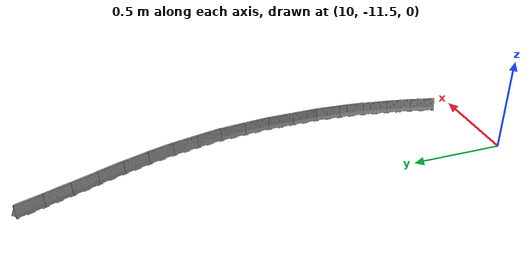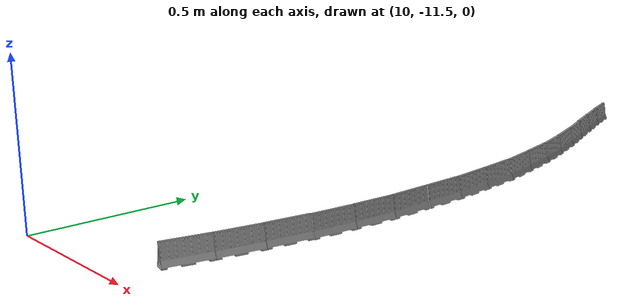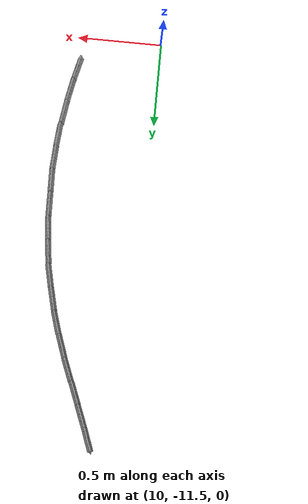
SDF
<sdf version="1.6">
 <world name="bfmc_official">
  <model name="separator_clone_clone_clone_clone_clone_clone_clone_clone_2_clone_clone_clone_clone_clone_clone_clone_clone_clone_clone_clone_clone_clone_clone_clone_clone_clone_clone_clone_clone_clone_clone_clone_clone_clone_clone">
   <link name="separator::separator::link_0">
    <inertial>
     <mass>1</mass>
     <inertia>
      <ixx>0.166667</ixx>
      <ixy>0</ixy>
      <ixz>0</ixz>
      <iyy>0.166667</iyy>
      <iyz>0</iyz>
      <izz>0.166667</izz>
     </inertia>
    </inertial>
    <visual name="visual">
     <geometry><mesh><uri>model://separator/meshes/separator.dae</uri><scale>1 1 1</scale></mesh></geometry>
     <material>
      <lighting>1</lighting>
      <script><uri>file://media/materials/scripts/gazebo.material</uri><name>Gazebo/Gray</name></script>
      <shader type="vertex"><normal_map>__default__</normal_map></shader>
      <ambient>0.3 0.3 0.3 1</ambient>
      <diffuse>0.7 0.7 0.7 1</diffuse>
      <specular>0.01 0.01 0.01 1</specular>
      <emissive>0 0 0 1</emissive>
     </material>
    </visual>
    <collision name="collision">
     <geometry><mesh><uri>model://separator/meshes/separator.dae</uri><scale>1 1 1</scale></mesh></geometry>
     <surface>
      <friction>
       <ode><mu>1</mu><mu2>1</mu2><fdir1>0 0 0</fdir1><slip1>0</slip1><slip2>0</slip2></ode>
       <torsional>
        <coefficient>1</coefficient>
        <patch_radius>0</patch_radius>
        <surface_radius>0</surface_radius>
        <use_patch_radius>1</use_patch_radius>
        <ode><slip>0</slip></ode>
       </torsional>
      </friction>
      <bounce><restitution_coefficient>0</restitution_coefficient><threshold>1e+06</threshold></bounce>
      <contact>
       <collide_without_contact>0</collide_without_contact>
       <collide_without_contact_bitmask>1</collide_without_contact_bitmask>
       <collide_bitmask>1</collide_bitmask>
       <ode>
        <soft_cfm>0</soft_cfm>
        <soft_erp>0.2</soft_erp>
        <kp>1e+13</kp>
        <kd>1</kd>
        <max_vel>0.01</max_vel>
        <min_depth>0</min_depth>
       </ode>
       <bullet>
        <split_impulse>1</split_impulse>
        <split_impulse_penetration_threshold>-0.01</split_impulse_penetration_threshold>
        <soft_cfm>0</soft_cfm>
        <soft_erp>0.2</soft_erp>
        <kp>1e+13</kp>
        <kd>1</kd>
       </bullet>
      </contact>
     </surface>
    </collision>
   </link>
   <static>1</static>
   <pose>10.4863 -11.3058 0.044642 0 -0 2.90525</pose>
  </model>
  <model name="separator_clone_clone_clone_clone_clone_clone_clone_clone_2_clone_clone_clone_clone_clone_clone_clone_clone_clone_clone_clone_clone_clone_clone_clone_clone_clone_clone_clone_clone_clone_clone_clone_clone_clone_clone_clone">
   <link name="separator::separator::link_0">
    <inertial>
     <mass>1</mass>
     <inertia>
      <ixx>0.166667</ixx>
      <ixy>0</ixy>
      <ixz>0</ixz>
      <iyy>0.166667</iyy>
      <iyz>0</iyz>
      <izz>0.166667</izz>
     </inertia>
    </inertial>
    <visual name="visual">
     <geometry><mesh><uri>model://separator/meshes/separator.dae</uri><scale>1 1 1</scale></mesh></geometry>
     <material>
      <lighting>1</lighting>
      <script><uri>file://media/materials/scripts/gazebo.material</uri><name>Gazebo/Gray</name></script>
      <shader type="vertex"><normal_map>__default__</normal_map></shader>
      <ambient>0.3 0.3 0.3 1</ambient>
      <diffuse>0.7 0.7 0.7 1</diffuse>
      <specular>0.01 0.01 0.01 1</specular>
      <emissive>0 0 0 1</emissive>
     </material>
    </visual>
    <collision name="collision">
     <geometry><mesh><uri>model://separator/meshes/separator.dae</uri><scale>1 1 1</scale></mesh></geometry>
     <surface>
      <friction>
       <ode><mu>1</mu><mu2>1</mu2><fdir1>0 0 0</fdir1><slip1>0</slip1><slip2>0</slip2></ode>
       <torsional>
        <coefficient>1</coefficient>
        <patch_radius>0</patch_radius>
        <surface_radius>0</surface_radius>
        <use_patch_radius>1</use_patch_radius>
        <ode><slip>0</slip></ode>
       </torsional>
      </friction>
      <bounce><restitution_coefficient>0</restitution_coefficient><threshold>1e+06</threshold></bounce>
      <contact>
       <collide_without_contact>0</collide_without_contact>
       <collide_without_contact_bitmask>1</collide_without_contact_bitmask>
       <collide_bitmask>1</collide_bitmask>
       <ode>
        <soft_cfm>0</soft_cfm>
        <soft_erp>0.2</soft_erp>
        <kp>1e+13</kp>
        <kd>1</kd>
        <max_vel>0.01</max_vel>
        <min_depth>0</min_depth>
       </ode>
       <bullet>
        <split_impulse>1</split_impulse>
        <split_impulse_penetration_threshold>-0.01</split_impulse_penetration_threshold>
        <soft_cfm>0</soft_cfm>
        <soft_erp>0.2</soft_erp>
        <kp>1e+13</kp>
        <kd>1</kd>
       </bullet>
      </contact>
     </surface>
    </collision>
   </link>
   <static>1</static>
   <pose>10.5166 -11.1677 0.044642 0 -0 2.94946</pose>
  </model>
  <model name="separator_clone_clone_clone_clone_clone_clone_clone_clone_2_clone_clone_clone_clone_clone_clone_clone_clone_clone_clone_clone_clone_clone_clone_clone_clone_clone_clone_clone_clone_clone_clone_clone_clone_clone_clone_clone_clone">
   <link name="separator::separator::link_0">
    <inertial>
     <mass>1</mass>
     <inertia>
      <ixx>0.166667</ixx>
      <ixy>0</ixy>
      <ixz>0</ixz>
      <iyy>0.166667</iyy>
      <iyz>0</iyz>
      <izz>0.166667</izz>
     </inertia>
    </inertial>
    <visual name="visual">
     <geometry><mesh><uri>model://separator/meshes/separator.dae</uri><scale>1 1 1</scale></mesh></geometry>
     <material>
      <lighting>1</lighting>
      <script><uri>file://media/materials/scripts/gazebo.material</uri><name>Gazebo/Gray</name></script>
      <shader type="vertex"><normal_map>__default__</normal_map></shader>
      <ambient>0.3 0.3 0.3 1</ambient>
      <diffuse>0.7 0.7 0.7 1</diffuse>
      <specular>0.01 0.01 0.01 1</specular>
      <emissive>0 0 0 1</emissive>
     </material>
    </visual>
    <collision name="collision">
     <geometry><mesh><uri>model://separator/meshes/separator.dae</uri><scale>1 1 1</scale></mesh></geometry>
     <surface>
      <friction>
       <ode><mu>1</mu><mu2>1</mu2><fdir1>0 0 0</fdir1><slip1>0</slip1><slip2>0</slip2></ode>
       <torsional>
        <coefficient>1</coefficient>
        <patch_radius>0</patch_radius>
        <surface_radius>0</surface_radius>
        <use_patch_radius>1</use_patch_radius>
        <ode><slip>0</slip></ode>
       </torsional>
      </friction>
      <bounce><restitution_coefficient>0</restitution_coefficient><threshold>1e+06</threshold></bounce>
      <contact>
       <collide_without_contact>0</collide_without_contact>
       <collide_without_contact_bitmask>1</collide_without_contact_bitmask>
       <collide_bitmask>1</collide_bitmask>
       <ode>
        <soft_cfm>0</soft_cfm>
        <soft_erp>0.2</soft_erp>
        <kp>1e+13</kp>
        <kd>1</kd>
        <max_vel>0.01</max_vel>
        <min_depth>0</min_depth>
       </ode>
       <bullet>
        <split_impulse>1</split_impulse>
        <split_impulse_penetration_threshold>-0.01</split_impulse_penetration_threshold>
        <soft_cfm>0</soft_cfm>
        <soft_erp>0.2</soft_erp>
        <kp>1e+13</kp>
        <kd>1</kd>
       </bullet>
      </contact>
     </surface>
    </collision>
   </link>
   <static>1</static>
   <pose>10.5399 -11.0283 0.044642 0 -0 2.99042</pose>
  </model>
  <model name="separator_clone_clone_clone_clone_clone_clone_clone_clone_2_clone_clone_clone_clone_clone_clone_clone_clone_clone_clone_clone_clone_clone_clone_clone_clone_clone_clone_clone_clone_clone_clone_clone_clone_clone_clone_clone_clone_clone">
   <link name="separator::separator::link_0">
    <inertial>
     <mass>1</mass>
     <inertia>
      <ixx>0.166667</ixx>
      <ixy>0</ixy>
      <ixz>0</ixz>
      <iyy>0.166667</iyy>
      <iyz>0</iyz>
      <izz>0.166667</izz>
     </inertia>
    </inertial>
    <visual name="visual">
     <geometry><mesh><uri>model://separator/meshes/separator.dae</uri><scale>1 1 1</scale></mesh></geometry>
     <material>
      <lighting>1</lighting>
      <script><uri>file://media/materials/scripts/gazebo.material</uri><name>Gazebo/Gray</name></script>
      <shader type="vertex"><normal_map>__default__</normal_map></shader>
      <ambient>0.3 0.3 0.3 1</ambient>
      <diffuse>0.7 0.7 0.7 1</diffuse>
      <specular>0.01 0.01 0.01 1</specular>
      <emissive>0 0 0 1</emissive>
     </material>
    </visual>
    <collision name="collision">
     <geometry><mesh><uri>model://separator/meshes/separator.dae</uri><scale>1 1 1</scale></mesh></geometry>
     <surface>
      <friction>
       <ode><mu>1</mu><mu2>1</mu2><fdir1>0 0 0</fdir1><slip1>0</slip1><slip2>0</slip2></ode>
       <torsional>
        <coefficient>1</coefficient>
        <patch_radius>0</patch_radius>
        <surface_radius>0</surface_radius>
        <use_patch_radius>1</use_patch_radius>
        <ode><slip>0</slip></ode>
       </torsional>
      </friction>
      <bounce><restitution_coefficient>0</restitution_coefficient><threshold>1e+06</threshold></bounce>
      <contact>
       <collide_without_contact>0</collide_without_contact>
       <collide_without_contact_bitmask>1</collide_without_contact_bitmask>
       <collide_bitmask>1</collide_bitmask>
       <ode>
        <soft_cfm>0</soft_cfm>
        <soft_erp>0.2</soft_erp>
        <kp>1e+13</kp>
        <kd>1</kd>
        <max_vel>0.01</max_vel>
        <min_depth>0</min_depth>
       </ode>
       <bullet>
        <split_impulse>1</split_impulse>
        <split_impulse_penetration_threshold>-0.01</split_impulse_penetration_threshold>
        <soft_cfm>0</soft_cfm>
        <soft_erp>0.2</soft_erp>
        <kp>1e+13</kp>
        <kd>1</kd>
       </bullet>
      </contact>
     </surface>
    </collision>
   </link>
   <static>1</static>
   <pose>10.5605 -10.8885 0.044642 0 -0 3.04562</pose>
  </model>
  <model name="separator_clone_clone_clone_clone_clone_clone_clone_clone_2_clone_clone_clone_clone_clone_clone_clone_clone_clone_clone_clone_clone_clone_clone_clone_clone_clone_clone_clone_clone_clone_clone_clone_clone_clone_clone_clone_clone_clone_clone">
   <link name="separator::separator::link_0">
    <inertial>
     <mass>1</mass>
     <inertia>
      <ixx>0.166667</ixx>
      <ixy>0</ixy>
      <ixz>0</ixz>
      <iyy>0.166667</iyy>
      <iyz>0</iyz>
      <izz>0.166667</izz>
     </inertia>
    </inertial>
    <visual name="visual">
     <geometry><mesh><uri>model://separator/meshes/separator.dae</uri><scale>1 1 1</scale></mesh></geometry>
     <material>
      <lighting>1</lighting>
      <script><uri>file://media/materials/scripts/gazebo.material</uri><name>Gazebo/Gray</name></script>
      <shader type="vertex"><normal_map>__default__</normal_map></shader>
      <ambient>0.3 0.3 0.3 1</ambient>
      <diffuse>0.7 0.7 0.7 1</diffuse>
      <specular>0.01 0.01 0.01 1</specular>
      <emissive>0 0 0 1</emissive>
     </material>
    </visual>
    <collision name="collision">
     <geometry><mesh><uri>model://separator/meshes/separator.dae</uri><scale>1 1 1</scale></mesh></geometry>
     <surface>
      <friction>
       <ode><mu>1</mu><mu2>1</mu2><fdir1>0 0 0</fdir1><slip1>0</slip1><slip2>0</slip2></ode>
       <torsional>
        <coefficient>1</coefficient>
        <patch_radius>0</patch_radius>
        <surface_radius>0</surface_radius>
        <use_patch_radius>1</use_patch_radius>
        <ode><slip>0</slip></ode>
       </torsional>
      </friction>
      <bounce><restitution_coefficient>0</restitution_coefficient><threshold>1e+06</threshold></bounce>
      <contact>
       <collide_without_contact>0</collide_without_contact>
       <collide_without_contact_bitmask>1</collide_without_contact_bitmask>
       <collide_bitmask>1</collide_bitmask>
       <ode>
        <soft_cfm>0</soft_cfm>
        <soft_erp>0.2</soft_erp>
        <kp>1e+13</kp>
        <kd>1</kd>
        <max_vel>0.01</max_vel>
        <min_depth>0</min_depth>
       </ode>
       <bullet>
        <split_impulse>1</split_impulse>
        <split_impulse_penetration_threshold>-0.01</split_impulse_penetration_threshold>
        <soft_cfm>0</soft_cfm>
        <soft_erp>0.2</soft_erp>
        <kp>1e+13</kp>
        <kd>1</kd>
       </bullet>
      </contact>
     </surface>
    </collision>
   </link>
   <static>1</static>
   <pose>10.5708 -10.7475 0.044642 0 -0 3.07687</pose>
  </model>
  <model name="separator_clone_clone_clone_clone_clone_clone_clone_clone_2_clone_clone_clone_clone_clone_clone_clone_clone_clone_clone_clone_clone_clone_clone_clone_clone_clone_clone_clone_clone_clone_clone_clone_clone_clone_clone_clone_clone_clone_clone_clone">
   <link name="separator::separator::link_0">
    <inertial>
     <mass>1</mass>
     <inertia>
      <ixx>0.166667</ixx>
      <ixy>0</ixy>
      <ixz>0</ixz>
      <iyy>0.166667</iyy>
      <iyz>0</iyz>
      <izz>0.166667</izz>
     </inertia>
    </inertial>
    <visual name="visual">
     <geometry><mesh><uri>model://separator/meshes/separator.dae</uri><scale>1 1 1</scale></mesh></geometry>
     <material>
      <lighting>1</lighting>
      <script><uri>file://media/materials/scripts/gazebo.material</uri><name>Gazebo/Gray</name></script>
      <shader type="vertex"><normal_map>__default__</normal_map></shader>
      <ambient>0.3 0.3 0.3 1</ambient>
      <diffuse>0.7 0.7 0.7 1</diffuse>
      <specular>0.01 0.01 0.01 1</specular>
      <emissive>0 0 0 1</emissive>
     </material>
    </visual>
    <collision name="collision">
     <geometry><mesh><uri>model://separator/meshes/separator.dae</uri><scale>1 1 1</scale></mesh></geometry>
     <surface>
      <friction>
       <ode><mu>1</mu><mu2>1</mu2><fdir1>0 0 0</fdir1><slip1>0</slip1><slip2>0</slip2></ode>
       <torsional>
        <coefficient>1</coefficient>
        <patch_radius>0</patch_radius>
        <surface_radius>0</surface_radius>
        <use_patch_radius>1</use_patch_radius>
        <ode><slip>0</slip></ode>
       </torsional>
      </friction>
      <bounce><restitution_coefficient>0</restitution_coefficient><threshold>1e+06</threshold></bounce>
      <contact>
       <collide_without_contact>0</collide_without_contact>
       <collide_without_contact_bitmask>1</collide_without_contact_bitmask>
       <collide_bitmask>1</collide_bitmask>
       <ode>
        <soft_cfm>0</soft_cfm>
        <soft_erp>0.2</soft_erp>
        <kp>1e+13</kp>
        <kd>1</kd>
        <max_vel>0.01</max_vel>
        <min_depth>0</min_depth>
       </ode>
       <bullet>
        <split_impulse>1</split_impulse>
        <split_impulse_penetration_threshold>-0.01</split_impulse_penetration_threshold>
        <soft_cfm>0</soft_cfm>
        <soft_erp>0.2</soft_erp>
        <kp>1e+13</kp>
        <kd>1</kd>
       </bullet>
      </contact>
     </surface>
    </collision>
   </link>
   <static>1</static>
   <pose>10.5738 -10.606 0.044642 0 -0 -3.12201</pose>
  </model>
  <model name="separator_clone_clone_clone_clone_clone_clone_clone_clone_2_clone_clone_clone_clone_clone_clone_clone_clone_clone_clone_clone_clone_clone_clone_clone_clone_clone_clone_clone_clone_clone_clone_clone_clone_clone_clone_clone_clone_clone_clone_clone_clone">
   <link name="separator::separator::link_0">
    <inertial>
     <mass>1</mass>
     <inertia>
      <ixx>0.166667</ixx>
      <ixy>0</ixy>
      <ixz>0</ixz>
      <iyy>0.166667</iyy>
      <iyz>0</iyz>
      <izz>0.166667</izz>
     </inertia>
    </inertial>
    <visual name="visual">
     <geometry><mesh><uri>model://separator/meshes/separator.dae</uri><scale>1 1 1</scale></mesh></geometry>
     <material>
      <lighting>1</lighting>
      <script><uri>file://media/materials/scripts/gazebo.material</uri><name>Gazebo/Gray</name></script>
      <shader type="vertex"><normal_map>__default__</normal_map></shader>
      <ambient>0.3 0.3 0.3 1</ambient>
      <diffuse>0.7 0.7 0.7 1</diffuse>
      <specular>0.01 0.01 0.01 1</specular>
      <emissive>0 0 0 1</emissive>
     </material>
    </visual>
    <collision name="collision">
     <geometry><mesh><uri>model://separator/meshes/separator.dae</uri><scale>1 1 1</scale></mesh></geometry>
     <surface>
      <friction>
       <ode><mu>1</mu><mu2>1</mu2><fdir1>0 0 0</fdir1><slip1>0</slip1><slip2>0</slip2></ode>
       <torsional>
        <coefficient>1</coefficient>
        <patch_radius>0</patch_radius>
        <surface_radius>0</surface_radius>
        <use_patch_radius>1</use_patch_radius>
        <ode><slip>0</slip></ode>
       </torsional>
      </friction>
      <bounce><restitution_coefficient>0</restitution_coefficient><threshold>1e+06</threshold></bounce>
      <contact>
       <collide_without_contact>0</collide_without_contact>
       <collide_without_contact_bitmask>1</collide_without_contact_bitmask>
       <collide_bitmask>1</collide_bitmask>
       <ode>
        <soft_cfm>0</soft_cfm>
        <soft_erp>0.2</soft_erp>
        <kp>1e+13</kp>
        <kd>1</kd>
        <max_vel>0.01</max_vel>
        <min_depth>0</min_depth>
       </ode>
       <bullet>
        <split_impulse>1</split_impulse>
        <split_impulse_penetration_threshold>-0.01</split_impulse_penetration_threshold>
        <soft_cfm>0</soft_cfm>
        <soft_erp>0.2</soft_erp>
        <kp>1e+13</kp>
        <kd>1</kd>
       </bullet>
      </contact>
     </surface>
    </collision>
   </link>
   <static>1</static>
   <pose>10.5712 -10.4602 0.044642 0 0 -3.12201</pose>
  </model>
  <model name="separator_clone_clone_clone_clone_clone_clone_clone_clone_2_clone_clone_clone_clone_clone_clone_clone_clone_clone_clone_clone_clone_clone_clone_clone_clone_clone_clone_clone_clone_clone_clone_clone_clone_clone_clone_clone_clone_clone_clone_clone_clone_clone">
   <link name="separator::separator::link_0">
    <inertial>
     <mass>1</mass>
     <inertia>
      <ixx>0.166667</ixx>
      <ixy>0</ixy>
      <ixz>0</ixz>
      <iyy>0.166667</iyy>
      <iyz>0</iyz>
      <izz>0.166667</izz>
     </inertia>
    </inertial>
    <visual name="visual">
     <geometry><mesh><uri>model://separator/meshes/separator.dae</uri><scale>1 1 1</scale></mesh></geometry>
     <material>
      <lighting>1</lighting>
      <script><uri>file://media/materials/scripts/gazebo.material</uri><name>Gazebo/Gray</name></script>
      <shader type="vertex"><normal_map>__default__</normal_map></shader>
      <ambient>0.3 0.3 0.3 1</ambient>
      <diffuse>0.7 0.7 0.7 1</diffuse>
      <specular>0.01 0.01 0.01 1</specular>
      <emissive>0 0 0 1</emissive>
     </material>
    </visual>
    <collision name="collision">
     <geometry><mesh><uri>model://separator/meshes/separator.dae</uri><scale>1 1 1</scale></mesh></geometry>
     <surface>
      <friction>
       <ode><mu>1</mu><mu2>1</mu2><fdir1>0 0 0</fdir1><slip1>0</slip1><slip2>0</slip2></ode>
       <torsional>
        <coefficient>1</coefficient>
        <patch_radius>0</patch_radius>
        <surface_radius>0</surface_radius>
        <use_patch_radius>1</use_patch_radius>
        <ode><slip>0</slip></ode>
       </torsional>
      </friction>
      <bounce><restitution_coefficient>0</restitution_coefficient><threshold>1e+06</threshold></bounce>
      <contact>
       <collide_without_contact>0</collide_without_contact>
       <collide_without_contact_bitmask>1</collide_without_contact_bitmask>
       <collide_bitmask>1</collide_bitmask>
       <ode>
        <soft_cfm>0</soft_cfm>
        <soft_erp>0.2</soft_erp>
        <kp>1e+13</kp>
        <kd>1</kd>
        <max_vel>0.01</max_vel>
        <min_depth>0</min_depth>
       </ode>
       <bullet>
        <split_impulse>1</split_impulse>
        <split_impulse_penetration_threshold>-0.01</split_impulse_penetration_threshold>
        <soft_cfm>0</soft_cfm>
        <soft_erp>0.2</soft_erp>
        <kp>1e+13</kp>
        <kd>1</kd>
       </bullet>
      </contact>
     </surface>
    </collision>
   </link>
   <static>1</static>
   <pose>10.5638 -10.3195 0.044642 0 0 -3.04003</pose>
  </model>
  <model name="separator_clone_clone_clone_clone_clone_clone_clone_clone_2_clone_clone_clone_clone_clone_clone_clone_clone_clone_clone_clone_clone_clone_clone_clone_clone_clone_clone_clone_clone_clone_clone_clone_clone_clone_clone_clone_clone_clone_clone_clone_clone_clone_clone">
   <link name="separator::separator::link_0">
    <inertial>
     <mass>1</mass>
     <inertia>
      <ixx>0.166667</ixx>
      <ixy>0</ixy>
      <ixz>0</ixz>
      <iyy>0.166667</iyy>
      <iyz>0</iyz>
      <izz>0.166667</izz>
     </inertia>
    </inertial>
    <visual name="visual">
     <geometry><mesh><uri>model://separator/meshes/separator.dae</uri><scale>1 1 1</scale></mesh></geometry>
     <material>
      <lighting>1</lighting>
      <script><uri>file://media/materials/scripts/gazebo.material</uri><name>Gazebo/Gray</name></script>
      <shader type="vertex"><normal_map>__default__</normal_map></shader>
      <ambient>0.3 0.3 0.3 1</ambient>
      <diffuse>0.7 0.7 0.7 1</diffuse>
      <specular>0.01 0.01 0.01 1</specular>
      <emissive>0 0 0 1</emissive>
     </material>
    </visual>
    <collision name="collision">
     <geometry><mesh><uri>model://separator/meshes/separator.dae</uri><scale>1 1 1</scale></mesh></geometry>
     <surface>
      <friction>
       <ode><mu>1</mu><mu2>1</mu2><fdir1>0 0 0</fdir1><slip1>0</slip1><slip2>0</slip2></ode>
       <torsional>
        <coefficient>1</coefficient>
        <patch_radius>0</patch_radius>
        <surface_radius>0</surface_radius>
        <use_patch_radius>1</use_patch_radius>
        <ode><slip>0</slip></ode>
       </torsional>
      </friction>
      <bounce><restitution_coefficient>0</restitution_coefficient><threshold>1e+06</threshold></bounce>
      <contact>
       <collide_without_contact>0</collide_without_contact>
       <collide_without_contact_bitmask>1</collide_without_contact_bitmask>
       <collide_bitmask>1</collide_bitmask>
       <ode>
        <soft_cfm>0</soft_cfm>
        <soft_erp>0.2</soft_erp>
        <kp>1e+13</kp>
        <kd>1</kd>
        <max_vel>0.01</max_vel>
        <min_depth>0</min_depth>
       </ode>
       <bullet>
        <split_impulse>1</split_impulse>
        <split_impulse_penetration_threshold>-0.01</split_impulse_penetration_threshold>
        <soft_cfm>0</soft_cfm>
        <soft_erp>0.2</soft_erp>
        <kp>1e+13</kp>
        <kd>1</kd>
       </bullet>
      </contact>
     </surface>
    </collision>
   </link>
   <static>1</static>
   <pose>10.5489 -10.1779 0.044642 0 0 -3.0227</pose>
  </model>
  <model name="separator_clone_clone_clone_clone_clone_clone_clone_clone_2_clone_clone_clone_clone_clone_clone_clone_clone_clone_clone_clone_clone_clone_clone_clone_clone_clone_clone_clone_clone_clone_clone_clone_clone_clone_clone_clone_clone_clone_clone_clone_clone_clone_clone_clone">
   <link name="separator::separator::link_0">
    <inertial>
     <mass>1</mass>
     <inertia>
      <ixx>0.166667</ixx>
      <ixy>0</ixy>
      <ixz>0</ixz>
      <iyy>0.166667</iyy>
      <iyz>0</iyz>
      <izz>0.166667</izz>
     </inertia>
    </inertial>
    <visual name="visual">
     <geometry><mesh><uri>model://separator/meshes/separator.dae</uri><scale>1 1 1</scale></mesh></geometry>
     <material>
      <lighting>1</lighting>
      <script><uri>file://media/materials/scripts/gazebo.material</uri><name>Gazebo/Gray</name></script>
      <shader type="vertex"><normal_map>__default__</normal_map></shader>
      <ambient>0.3 0.3 0.3 1</ambient>
      <diffuse>0.7 0.7 0.7 1</diffuse>
      <specular>0.01 0.01 0.01 1</specular>
      <emissive>0 0 0 1</emissive>
     </material>
    </visual>
    <collision name="collision">
     <geometry><mesh><uri>model://separator/meshes/separator.dae</uri><scale>1 1 1</scale></mesh></geometry>
     <surface>
      <friction>
       <ode><mu>1</mu><mu2>1</mu2><fdir1>0 0 0</fdir1><slip1>0</slip1><slip2>0</slip2></ode>
       <torsional>
        <coefficient>1</coefficient>
        <patch_radius>0</patch_radius>
        <surface_radius>0</surface_radius>
        <use_patch_radius>1</use_patch_radius>
        <ode><slip>0</slip></ode>
       </torsional>
      </friction>
      <bounce><restitution_coefficient>0</restitution_coefficient><threshold>1e+06</threshold></bounce>
      <contact>
       <collide_without_contact>0</collide_without_contact>
       <collide_without_contact_bitmask>1</collide_without_contact_bitmask>
       <collide_bitmask>1</collide_bitmask>
       <ode>
        <soft_cfm>0</soft_cfm>
        <soft_erp>0.2</soft_erp>
        <kp>1e+13</kp>
        <kd>1</kd>
        <max_vel>0.01</max_vel>
        <min_depth>0</min_depth>
       </ode>
       <bullet>
        <split_impulse>1</split_impulse>
        <split_impulse_penetration_threshold>-0.01</split_impulse_penetration_threshold>
        <soft_cfm>0</soft_cfm>
        <soft_erp>0.2</soft_erp>
        <kp>1e+13</kp>
        <kd>1</kd>
       </bullet>
      </contact>
     </surface>
    </collision>
   </link>
   <static>1</static>
   <pose>10.5276 -10.0389 0.044642 0 0 -2.9299</pose>
  </model>
  <model name="separator_clone_clone_clone_clone_clone_clone_clone_clone_2_clone_clone_clone_clone_clone_clone_clone_clone_clone_clone_clone_clone_clone_clone_clone_clone_clone_clone_clone_clone_clone_clone_clone_clone_clone_clone_clone_clone_clone_clone_clone_clone_clone_clone_clone_clone">
   <link name="separator::separator::link_0">
    <inertial>
     <mass>1</mass>
     <inertia>
      <ixx>0.166667</ixx>
      <ixy>0</ixy>
      <ixz>0</ixz>
      <iyy>0.166667</iyy>
      <iyz>0</iyz>
      <izz>0.166667</izz>
     </inertia>
    </inertial>
    <visual name="visual">
     <geometry><mesh><uri>model://separator/meshes/separator.dae</uri><scale>1 1 1</scale></mesh></geometry>
     <material>
      <lighting>1</lighting>
      <script><uri>file://media/materials/scripts/gazebo.material</uri><name>Gazebo/Gray</name></script>
      <shader type="vertex"><normal_map>__default__</normal_map></shader>
      <ambient>0.3 0.3 0.3 1</ambient>
      <diffuse>0.7 0.7 0.7 1</diffuse>
      <specular>0.01 0.01 0.01 1</specular>
      <emissive>0 0 0 1</emissive>
     </material>
    </visual>
    <collision name="collision">
     <geometry><mesh><uri>model://separator/meshes/separator.dae</uri><scale>1 1 1</scale></mesh></geometry>
     <surface>
      <friction>
       <ode><mu>1</mu><mu2>1</mu2><fdir1>0 0 0</fdir1><slip1>0</slip1><slip2>0</slip2></ode>
       <torsional>
        <coefficient>1</coefficient>
        <patch_radius>0</patch_radius>
        <surface_radius>0</surface_radius>
        <use_patch_radius>1</use_patch_radius>
        <ode><slip>0</slip></ode>
       </torsional>
      </friction>
      <bounce><restitution_coefficient>0</restitution_coefficient><threshold>1e+06</threshold></bounce>
      <contact>
       <collide_without_contact>0</collide_without_contact>
       <collide_without_contact_bitmask>1</collide_without_contact_bitmask>
       <collide_bitmask>1</collide_bitmask>
       <ode>
        <soft_cfm>0</soft_cfm>
        <soft_erp>0.2</soft_erp>
        <kp>1e+13</kp>
        <kd>1</kd>
        <max_vel>0.01</max_vel>
        <min_depth>0</min_depth>
       </ode>
       <bullet>
        <split_impulse>1</split_impulse>
        <split_impulse_penetration_threshold>-0.01</split_impulse_penetration_threshold>
        <soft_cfm>0</soft_cfm>
        <soft_erp>0.2</soft_erp>
        <kp>1e+13</kp>
        <kd>1</kd>
       </bullet>
      </contact>
     </surface>
    </collision>
   </link>
   <static>1</static>
   <pose>10.4963 -9.9013 0.044642 0 0 -2.91058</pose>
  </model>
  <model name="separator_clone_clone_clone_clone_clone_clone_clone_clone_2_clone_clone_clone_clone_clone_clone_clone_clone_clone_clone_clone_clone_clone_clone_clone_clone_clone_clone_clone_clone_clone_clone_clone_clone_clone_clone_clone_clone_clone_clone_clone_clone_clone_clone_clone_clone_clone">
   <link name="separator::separator::link_0">
    <inertial>
     <mass>1</mass>
     <inertia>
      <ixx>0.166667</ixx>
      <ixy>0</ixy>
      <ixz>0</ixz>
      <iyy>0.166667</iyy>
      <iyz>0</iyz>
      <izz>0.166667</izz>
     </inertia>
    </inertial>
    <visual name="visual">
     <geometry><mesh><uri>model://separator/meshes/separator.dae</uri><scale>1 1 1</scale></mesh></geometry>
     <material>
      <lighting>1</lighting>
      <script><uri>file://media/materials/scripts/gazebo.material</uri><name>Gazebo/Gray</name></script>
      <shader type="vertex"><normal_map>__default__</normal_map></shader>
      <ambient>0.3 0.3 0.3 1</ambient>
      <diffuse>0.7 0.7 0.7 1</diffuse>
      <specular>0.01 0.01 0.01 1</specular>
      <emissive>0 0 0 1</emissive>
     </material>
    </visual>
    <collision name="collision">
     <geometry><mesh><uri>model://separator/meshes/separator.dae</uri><scale>1 1 1</scale></mesh></geometry>
     <surface>
      <friction>
       <ode><mu>1</mu><mu2>1</mu2><fdir1>0 0 0</fdir1><slip1>0</slip1><slip2>0</slip2></ode>
       <torsional>
        <coefficient>1</coefficient>
        <patch_radius>0</patch_radius>
        <surface_radius>0</surface_radius>
        <use_patch_radius>1</use_patch_radius>
        <ode><slip>0</slip></ode>
       </torsional>
      </friction>
      <bounce><restitution_coefficient>0</restitution_coefficient><threshold>1e+06</threshold></bounce>
      <contact>
       <collide_without_contact>0</collide_without_contact>
       <collide_without_contact_bitmask>1</collide_without_contact_bitmask>
       <collide_bitmask>1</collide_bitmask>
       <ode>
        <soft_cfm>0</soft_cfm>
        <soft_erp>0.2</soft_erp>
        <kp>1e+13</kp>
        <kd>1</kd>
        <max_vel>0.01</max_vel>
        <min_depth>0</min_depth>
       </ode>
       <bullet>
        <split_impulse>1</split_impulse>
        <split_impulse_penetration_threshold>-0.01</split_impulse_penetration_threshold>
        <soft_cfm>0</soft_cfm>
        <soft_erp>0.2</soft_erp>
        <kp>1e+13</kp>
        <kd>1</kd>
       </bullet>
      </contact>
     </surface>
    </collision>
   </link>
   <static>1</static>
   <pose>10.4607 -9.76405 0.044642 0 0 -2.84827</pose>
  </model>
  <model name="separator_clone_clone_clone_clone_clone_clone_clone_clone_2_clone_clone_clone_clone_clone_clone_clone_clone_clone_clone_clone_clone_clone_clone_clone_clone_clone_clone_clone_clone_clone_clone_clone_clone_clone_clone_clone_clone_clone_clone_clone_clone_clone_clone_clone_clone_clone_clone">
   <link name="separator::separator::link_0">
    <inertial>
     <mass>1</mass>
     <inertia>
      <ixx>0.166667</ixx>
      <ixy>0</ixy>
      <ixz>0</ixz>
      <iyy>0.166667</iyy>
      <iyz>0</iyz>
      <izz>0.166667</izz>
     </inertia>
    </inertial>
    <visual name="visual">
     <geometry><mesh><uri>model://separator/meshes/separator.dae</uri><scale>1 1 1</scale></mesh></geometry>
     <material>
      <lighting>1</lighting>
      <script><uri>file://media/materials/scripts/gazebo.material</uri><name>Gazebo/Gray</name></script>
      <shader type="vertex"><normal_map>__default__</normal_map></shader>
      <ambient>0.3 0.3 0.3 1</ambient>
      <diffuse>0.7 0.7 0.7 1</diffuse>
      <specular>0.01 0.01 0.01 1</specular>
      <emissive>0 0 0 1</emissive>
     </material>
    </visual>
    <collision name="collision">
     <geometry><mesh><uri>model://separator/meshes/separator.dae</uri><scale>1 1 1</scale></mesh></geometry>
     <surface>
      <friction>
       <ode><mu>1</mu><mu2>1</mu2><fdir1>0 0 0</fdir1><slip1>0</slip1><slip2>0</slip2></ode>
       <torsional>
        <coefficient>1</coefficient>
        <patch_radius>0</patch_radius>
        <surface_radius>0</surface_radius>
        <use_patch_radius>1</use_patch_radius>
        <ode><slip>0</slip></ode>
       </torsional>
      </friction>
      <bounce><restitution_coefficient>0</restitution_coefficient><threshold>1e+06</threshold></bounce>
      <contact>
       <collide_without_contact>0</collide_without_contact>
       <collide_without_contact_bitmask>1</collide_without_contact_bitmask>
       <collide_bitmask>1</collide_bitmask>
       <ode>
        <soft_cfm>0</soft_cfm>
        <soft_erp>0.2</soft_erp>
        <kp>1e+13</kp>
        <kd>1</kd>
        <max_vel>0.01</max_vel>
        <min_depth>0</min_depth>
       </ode>
       <bullet>
        <split_impulse>1</split_impulse>
        <split_impulse_penetration_threshold>-0.01</split_impulse_penetration_threshold>
        <soft_cfm>0</soft_cfm>
        <soft_erp>0.2</soft_erp>
        <kp>1e+13</kp>
        <kd>1</kd>
       </bullet>
      </contact>
     </surface>
    </collision>
   </link>
   <static>1</static>
   <pose>10.4157 -9.62846 0.044642 0 0 -2.80879</pose>
  </model>
  <model name="separator_clone_clone_clone_clone_clone_clone_clone_clone_2_clone_clone_clone_clone_clone_clone_clone_clone_clone_clone_clone_clone_clone_clone_clone_clone_clone_clone_clone_clone_clone_clone_clone_clone_clone_clone_clone_clone_clone_clone_clone_clone_clone_clone_clone_clone_clone_clone_clone">
   <link name="separator::separator::link_0">
    <inertial>
     <mass>1</mass>
     <inertia>
      <ixx>0.166667</ixx>
      <ixy>0</ixy>
      <ixz>0</ixz>
      <iyy>0.166667</iyy>
      <iyz>0</iyz>
      <izz>0.166667</izz>
     </inertia>
    </inertial>
    <visual name="visual">
     <geometry><mesh><uri>model://separator/meshes/separator.dae</uri><scale>1 1 1</scale></mesh></geometry>
     <material>
      <lighting>1</lighting>
      <script><uri>file://media/materials/scripts/gazebo.material</uri><name>Gazebo/Gray</name></script>
      <shader type="vertex"><normal_map>__default__</normal_map></shader>
      <ambient>0.3 0.3 0.3 1</ambient>
      <diffuse>0.7 0.7 0.7 1</diffuse>
      <specular>0.01 0.01 0.01 1</specular>
      <emissive>0 0 0 1</emissive>
     </material>
    </visual>
    <collision name="collision">
     <geometry><mesh><uri>model://separator/meshes/separator.dae</uri><scale>1 1 1</scale></mesh></geometry>
     <surface>
      <friction>
       <ode><mu>1</mu><mu2>1</mu2><fdir1>0 0 0</fdir1><slip1>0</slip1><slip2>0</slip2></ode>
       <torsional>
        <coefficient>1</coefficient>
        <patch_radius>0</patch_radius>
        <surface_radius>0</surface_radius>
        <use_patch_radius>1</use_patch_radius>
        <ode><slip>0</slip></ode>
       </torsional>
      </friction>
      <bounce><restitution_coefficient>0</restitution_coefficient><threshold>1e+06</threshold></bounce>
      <contact>
       <collide_without_contact>0</collide_without_contact>
       <collide_without_contact_bitmask>1</collide_without_contact_bitmask>
       <collide_bitmask>1</collide_bitmask>
       <ode>
        <soft_cfm>0</soft_cfm>
        <soft_erp>0.2</soft_erp>
        <kp>1e+13</kp>
        <kd>1</kd>
        <max_vel>0.01</max_vel>
        <min_depth>0</min_depth>
       </ode>
       <bullet>
        <split_impulse>1</split_impulse>
        <split_impulse_penetration_threshold>-0.01</split_impulse_penetration_threshold>
        <soft_cfm>0</soft_cfm>
        <soft_erp>0.2</soft_erp>
        <kp>1e+13</kp>
        <kd>1</kd>
       </bullet>
      </contact>
     </surface>
    </collision>
   </link>
   <static>1</static>
   <pose>10.3677 -9.49477 0.044642 0 0 -2.77073</pose>
  </model>
  <model name="separator_clone_clone_clone_clone_clone_clone_clone_clone_2_clone_clone_clone_clone_clone_clone_clone_clone_clone_clone_clone_clone_clone_clone_clone_clone_clone_clone_clone_clone_clone_clone_clone_clone_clone_clone_clone_clone_clone_clone_clone_clone_clone_clone_clone_clone_clone_clone_clone_clone">
   <link name="separator::separator::link_0">
    <inertial>
     <mass>1</mass>
     <inertia>
      <ixx>0.166667</ixx>
      <ixy>0</ixy>
      <ixz>0</ixz>
      <iyy>0.166667</iyy>
      <iyz>0</iyz>
      <izz>0.166667</izz>
     </inertia>
    </inertial>
    <visual name="visual">
     <geometry><mesh><uri>model://separator/meshes/separator.dae</uri><scale>1 1 1</scale></mesh></geometry>
     <material>
      <lighting>1</lighting>
      <script><uri>file://media/materials/scripts/gazebo.material</uri><name>Gazebo/Gray</name></script>
      <shader type="vertex"><normal_map>__default__</normal_map></shader>
      <ambient>0.3 0.3 0.3 1</ambient>
      <diffuse>0.7 0.7 0.7 1</diffuse>
      <specular>0.01 0.01 0.01 1</specular>
      <emissive>0 0 0 1</emissive>
     </material>
    </visual>
    <collision name="collision">
     <geometry><mesh><uri>model://separator/meshes/separator.dae</uri><scale>1 1 1</scale></mesh></geometry>
     <surface>
      <friction>
       <ode><mu>1</mu><mu2>1</mu2><fdir1>0 0 0</fdir1><slip1>0</slip1><slip2>0</slip2></ode>
       <torsional>
        <coefficient>1</coefficient>
        <patch_radius>0</patch_radius>
        <surface_radius>0</surface_radius>
        <use_patch_radius>1</use_patch_radius>
        <ode><slip>0</slip></ode>
       </torsional>
      </friction>
      <bounce><restitution_coefficient>0</restitution_coefficient><threshold>1e+06</threshold></bounce>
      <contact>
       <collide_without_contact>0</collide_without_contact>
       <collide_without_contact_bitmask>1</collide_without_contact_bitmask>
       <collide_bitmask>1</collide_bitmask>
       <ode>
        <soft_cfm>0</soft_cfm>
        <soft_erp>0.2</soft_erp>
        <kp>1e+13</kp>
        <kd>1</kd>
        <max_vel>0.01</max_vel>
        <min_depth>0</min_depth>
       </ode>
       <bullet>
        <split_impulse>1</split_impulse>
        <split_impulse_penetration_threshold>-0.01</split_impulse_penetration_threshold>
        <soft_cfm>0</soft_cfm>
        <soft_erp>0.2</soft_erp>
        <kp>1e+13</kp>
        <kd>1</kd>
       </bullet>
      </contact>
     </surface>
    </collision>
   </link>
   <static>1</static>
   <pose>10.3152 -9.3641 0.044642 0 0 -2.77073</pose>
  </model>
  <model name="separator_clone_clone_clone_clone_clone_clone_clone_clone_2_clone_clone_clone_clone_clone_clone_clone_clone_clone_clone_clone_clone_clone_clone_clone_clone_clone_clone_clone_clone_clone_clone_clone_clone_clone_clone_clone_clone_clone_clone_clone_clone_clone_clone_clone_clone_clone_clone_clone_clone_clone">
   <link name="separator::separator::link_0">
    <inertial>
     <mass>1</mass>
     <inertia>
      <ixx>0.166667</ixx>
      <ixy>0</ixy>
      <ixz>0</ixz>
      <iyy>0.166667</iyy>
      <iyz>0</iyz>
      <izz>0.166667</izz>
     </inertia>
    </inertial>
    <visual name="visual">
     <geometry><mesh><uri>model://separator/meshes/separator.dae</uri><scale>1 1 1</scale></mesh></geometry>
     <material>
      <lighting>1</lighting>
      <script><uri>file://media/materials/scripts/gazebo.material</uri><name>Gazebo/Gray</name></script>
      <shader type="vertex"><normal_map>__default__</normal_map></shader>
      <ambient>0.3 0.3 0.3 1</ambient>
      <diffuse>0.7 0.7 0.7 1</diffuse>
      <specular>0.01 0.01 0.01 1</specular>
      <emissive>0 0 0 1</emissive>
     </material>
    </visual>
    <collision name="collision">
     <geometry><mesh><uri>model://separator/meshes/separator.dae</uri><scale>1 1 1</scale></mesh></geometry>
     <surface>
      <friction>
       <ode><mu>1</mu><mu2>1</mu2><fdir1>0 0 0</fdir1><slip1>0</slip1><slip2>0</slip2></ode>
       <torsional>
        <coefficient>1</coefficient>
        <patch_radius>0</patch_radius>
        <surface_radius>0</surface_radius>
        <use_patch_radius>1</use_patch_radius>
        <ode><slip>0</slip></ode>
       </torsional>
      </friction>
      <bounce><restitution_coefficient>0</restitution_coefficient><threshold>1e+06</threshold></bounce>
      <contact>
       <collide_without_contact>0</collide_without_contact>
       <collide_without_contact_bitmask>1</collide_without_contact_bitmask>
       <collide_bitmask>1</collide_bitmask>
       <ode>
        <soft_cfm>0</soft_cfm>
        <soft_erp>0.2</soft_erp>
        <kp>1e+13</kp>
        <kd>1</kd>
        <max_vel>0.01</max_vel>
        <min_depth>0</min_depth>
       </ode>
       <bullet>
        <split_impulse>1</split_impulse>
        <split_impulse_penetration_threshold>-0.01</split_impulse_penetration_threshold>
        <soft_cfm>0</soft_cfm>
        <soft_erp>0.2</soft_erp>
        <kp>1e+13</kp>
        <kd>1</kd>
       </bullet>
      </contact>
     </surface>
    </collision>
   </link>
   <static>1</static>
   <pose>10.2649 -9.23213 0.044642 0 0 -2.77073</pose>
  </model>
  <model name="separator_clone_clone_clone_clone_clone_clone_clone_clone_2_clone_clone_clone_clone_clone_clone_clone_clone_clone_clone_clone_clone_clone_clone_clone_clone_clone_clone_clone_clone_clone_clone_clone_clone_clone_clone_clone_clone_clone_clone_clone_clone_clone_clone_clone_clone_clone_clone_clone_clone_clone_0">
   <link name="separator::separator::link_0">
    <inertial>
     <mass>1</mass>
     <inertia>
      <ixx>0.166667</ixx>
      <ixy>0</ixy>
      <ixz>0</ixz>
      <iyy>0.166667</iyy>
      <iyz>0</iyz>
      <izz>0.166667</izz>
     </inertia>
    </inertial>
    <visual name="visual">
     <geometry><mesh><uri>model://separator/meshes/separator.dae</uri><scale>1 1 1</scale></mesh></geometry>
     <material>
      <lighting>1</lighting>
      <script><uri>file://media/materials/scripts/gazebo.material</uri><name>Gazebo/Gray</name></script>
      <shader type="vertex"><normal_map>__default__</normal_map></shader>
      <ambient>0.3 0.3 0.3 1</ambient>
      <diffuse>0.7 0.7 0.7 1</diffuse>
      <specular>0.01 0.01 0.01 1</specular>
      <emissive>0 0 0 1</emissive>
     </material>
    </visual>
    <collision name="collision">
     <geometry><mesh><uri>model://separator/meshes/separator.dae</uri><scale>1 1 1</scale></mesh></geometry>
     <surface>
      <friction>
       <ode><mu>1</mu><mu2>1</mu2><fdir1>0 0 0</fdir1><slip1>0</slip1><slip2>0</slip2></ode>
       <torsional>
        <coefficient>1</coefficient>
        <patch_radius>0</patch_radius>
        <surface_radius>0</surface_radius>
        <use_patch_radius>1</use_patch_radius>
        <ode><slip>0</slip></ode>
       </torsional>
      </friction>
      <bounce><restitution_coefficient>0</restitution_coefficient><threshold>1e+06</threshold></bounce>
      <contact>
       <collide_without_contact>0</collide_without_contact>
       <collide_without_contact_bitmask>1</collide_without_contact_bitmask>
       <collide_bitmask>1</collide_bitmask>
       <ode>
        <soft_cfm>0</soft_cfm>
        <soft_erp>0.2</soft_erp>
        <kp>1e+13</kp>
        <kd>1</kd>
        <max_vel>0.01</max_vel>
        <min_depth>0</min_depth>
       </ode>
       <bullet>
        <split_impulse>1</split_impulse>
        <split_impulse_penetration_threshold>-0.01</split_impulse_penetration_threshold>
        <soft_cfm>0</soft_cfm>
        <soft_erp>0.2</soft_erp>
        <kp>1e+13</kp>
        <kd>1</kd>
       </bullet>
      </contact>
     </surface>
    </collision>
   </link>
   <static>1</static>
   <pose>10.2153 -9.10039 0.044642 0 0 -2.79345</pose>
  </model>
 </world>
</sdf>
